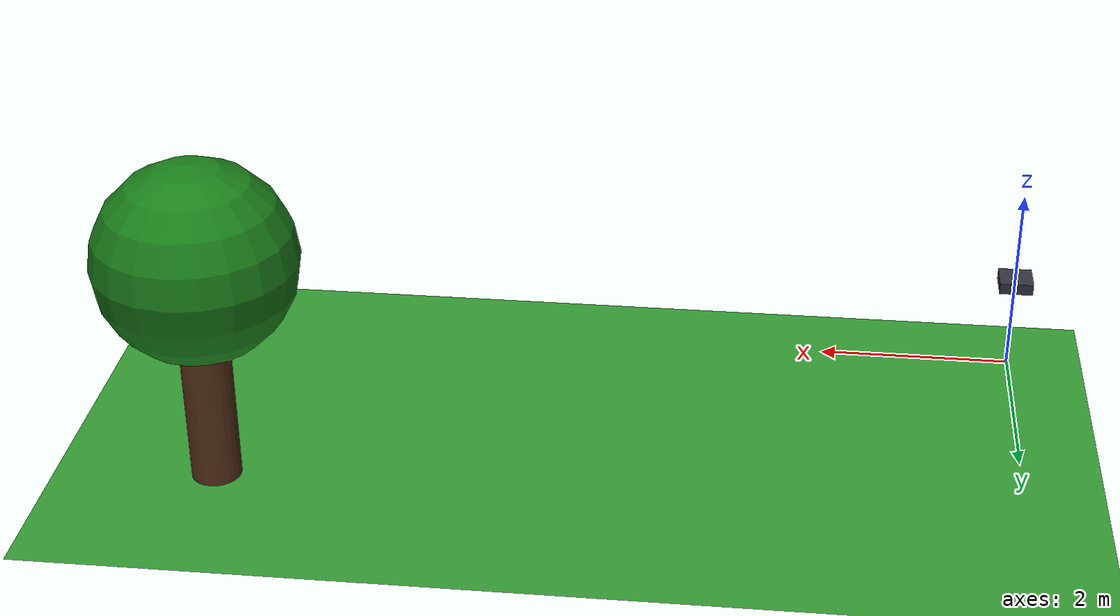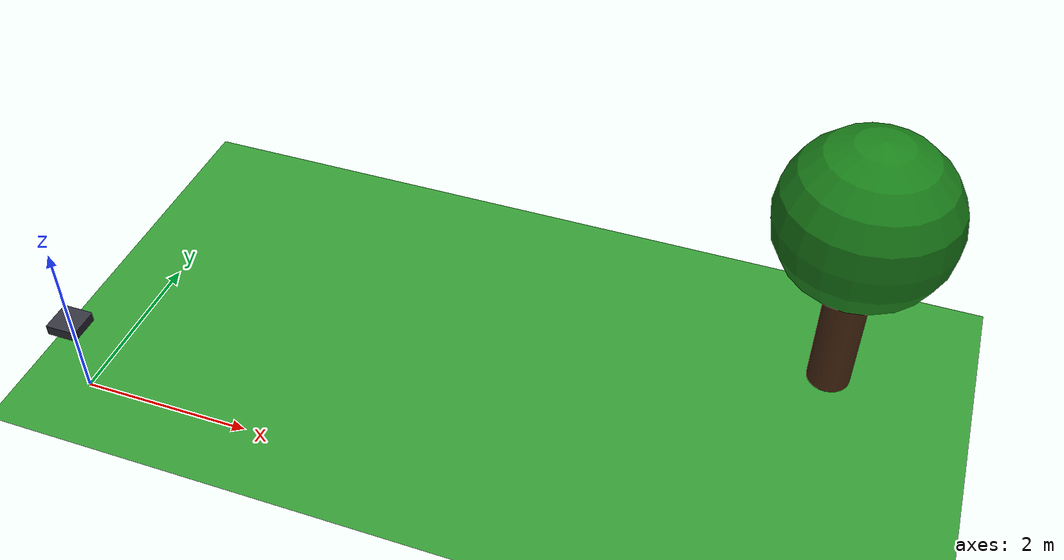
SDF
<?xml version="1.0" ?>
<sdf version="1.6">
  <world name="day_world">
    <gravity>0 0 -9.81</gravity>

    <!-- Day light -->
    <scene>
      <ambient>0.6 0.6 0.6 1</ambient>
      <background>0.7 0.9 1.0 1</background>
      <shadows>true</shadows>
    </scene>

    <light name="sun" type="directional">
      <cast_shadows>true</cast_shadows>
      <pose>0 0 10 0 0 0</pose>
      <diffuse>1 1 1 1</diffuse>
      <specular>0.2 0.2 0.2 1</specular>
      <direction>-0.3 0.2 -1</direction>
    </light>

    <!-- Ground -->
    <model name="ground_plane">
      <static>true</static>
      <link name="link">
        <collision name="collision">
          <geometry>
            <plane>
              <normal>0 0 1</normal>
              <size>200 200</size>
            </plane>
          </geometry>
        </collision>
        <visual name="visual">
          <geometry>
            <plane>
              <normal>0 0 1</normal>
              <size>200 200</size>
            </plane>
          </geometry>
          <material>
            <ambient>0.2 0.6 0.2 1</ambient>
            <diffuse>0.2 0.6 0.2 1</diffuse>
          </material>
        </visual>
      </link>
    </model>

    <!-- A simple tree -->
    <model name="tree_1">
      <static>true</static>
      <pose>8 3 0 0 0 0</pose>

      <link name="trunk">
        <collision name="trunk_collision">
          <pose>0 0 1 0 0 0</pose>
          <geometry>
            <cylinder>
              <radius>0.25</radius>
              <length>2.0</length>
            </cylinder>
          </geometry>
        </collision>
        <visual name="trunk_visual">
          <pose>0 0 1 0 0 0</pose>
          <geometry>
            <cylinder>
              <radius>0.25</radius>
              <length>2.0</length>
            </cylinder>
          </geometry>
          <material>
            <ambient>0.35 0.2 0.1 1</ambient>
            <diffuse>0.35 0.2 0.1 1</diffuse>
          </material>
        </visual>
      </link>

      <link name="crown">
        <pose>0 0 2.4 0 0 0</pose>
        <collision name="crown_collision">
          <geometry>
            <sphere>
              <radius>1.0</radius>
            </sphere>
          </geometry>
        </collision>
        <visual name="crown_visual">
          <geometry>
            <sphere>
              <radius>1.0</radius>
            </sphere>
          </geometry>
          <material>
            <ambient>0.1 0.5 0.1 1</ambient>
            <diffuse>0.1 0.5 0.1 1</diffuse>
          </material>
        </visual>
      </link>
    </model>

    <!-- Quadcopter (simple rigid body + sensors) -->
    <model name="quadcopter">
      <static>false</static>
      <pose>0 0 1.0 0 0 0</pose>

      <link name="base_link">
        <inertial>
          <mass>1.5</mass>
          <inertia>
            <ixx>0.03</ixx>
            <iyy>0.03</iyy>
            <izz>0.05</izz>
            <ixy>0</ixy>
            <ixz>0</ixz>
            <iyz>0</iyz>
          </inertia>
        </inertial>

        <collision name="body_collision">
          <geometry>
            <box>
              <size>0.35 0.35 0.12</size>
            </box>
          </geometry>
        </collision>

        <visual name="body_visual">
          <geometry>
            <box>
              <size>0.35 0.35 0.12</size>
            </box>
          </geometry>
          <material>
            <ambient>0.2 0.2 0.25 1</ambient>
            <diffuse>0.2 0.2 0.25 1</diffuse>
          </material>
        </visual>

        <!-- IMU sensory -->
        <sensor name="imu_sensor" type="imu">
          <always_on>true</always_on>
          <update_rate>200</update_rate>
          <imu>
            <angular_velocity>
              <x><noise type="gaussian"><mean>0</mean><stddev>0.0002</stddev></noise></x>
              <y><noise type="gaussian"><mean>0</mean><stddev>0.0002</stddev></noise></y>
              <z><noise type="gaussian"><mean>0</mean><stddev>0.0002</stddev></noise></z>
            </angular_velocity>
            <linear_acceleration>
              <x><noise type="gaussian"><mean>0</mean><stddev>0.01</stddev></noise></x>
              <y><noise type="gaussian"><mean>0</mean><stddev>0.01</stddev></noise></y>
              <z><noise type="gaussian"><mean>0</mean><stddev>0.01</stddev></noise></z>
            </linear_acceleration>
          </imu>

          <!-- If you use gazebo_ros_pkgs, this publishes a ROS content -->
          <plugin name="imu_plugin" filename="libgazebo_ros_imu_sensor.so">
            <robotNamespace>/quadcopter</robotNamespace>
            <bodyName>base_link</bodyName>
            <topicName>imu</topicName>
            <frameName>base_link</frameName>
            <updateRate>200.0</updateRate>
          </plugin>
        </sensor>

        <!-- GPS sensory (Gazebo "navsat") -->
        <sensor name="gps_sensor" type="navsat">
          <always_on>true</always_on>
          <update_rate>10</update_rate>
          <navsat>
            <position_sensing>
              <horizontal>
                <noise type="gaussian"><mean>0</mean><stddev>0.5</stddev></noise>
              </horizontal>
              <vertical>
                <noise type="gaussian"><mean>0</mean><stddev>1.0</stddev></noise>
              </vertical>
            </position_sensing>
            <velocity_sensing>
              <horizontal>
                <noise type="gaussian"><mean>0</mean><stddev>0.1</stddev></noise>
              </horizontal>
              <vertical>
                <noise type="gaussian"><mean>0</mean><stddev>0.2</stddev></noise>
              </vertical>
            </velocity_sensing>
          </navsat>

          <!-- If you use gazebo_ros_pkgs, this publishes a ROS content -->
          <plugin name="gps_plugin" filename="libgazebo_ros_gps.so">
            <robotNamespace>/quadcopter</robotNamespace>
            <bodyName>base_link</bodyName>
            <topicName>gps</topicName>
            <frameName>base_link</frameName>
            <updateRate>10.0</updateRate>
          </plugin>
        </sensor>

        <!-- 2D LiDAR (ray) -->
        <sensor name="lidar_2d" type="ray">
          <pose>0.15 0 0.05 0 0 0</pose>
          <always_on>true</always_on>
          <update_rate>10</update_rate>
          <ray>
            <scan>
              <horizontal>
                <samples>720</samples>
                <resolution>1</resolution>
                <min_angle>-3.141592653589793</min_angle>
                <max_angle>3.141592653589793</max_angle>
              </horizontal>
            </scan>
            <range>
              <min>0.15</min>
              <max>12.0</max>
              <resolution>0.01</resolution>
            </range>
            <noise type="gaussian">
              <mean>0</mean>
              <stddev>0.01</stddev>
            </noise>
          </ray>

          <!-- If you use gazebo_ros_pkgs, this publishes sensor_msgs/LaserScan -->
          <plugin name="lidar_plugin" filename="libgazebo_ros_laser.so">
            <robotNamespace>/quadcopter</robotNamespace>
            <topicName>scan</topicName>
            <frameName>lidar_link</frameName>
            <updateRate>10.0</updateRate>
          </plugin>
        </sensor>
      </link>

      <!-- An explicit frame for the lidar (optional but helpful) -->
      <link name="lidar_link">
        <pose>0.15 0 1.05 0 0 0</pose>
        <inertial>
          <mass>0.01</mass>
          <inertia>
            <ixx>1e-6</ixx><iyy>1e-6</iyy><izz>1e-6</izz>
            <ixy>0</ixy><ixz>0</ixz><iyz>0</iyz>
          </inertia>
        </inertial>
      </link>

      <joint name="lidar_joint" type="fixed">
        <parent>base_link</parent>
        <child>lidar_link</child>
      </joint>

      <!-- Aerodynamics / flight control_theory is intentionally omitted (this is a sensory-ready SDF example). -->
    </model>
  </world>
</sdf>
